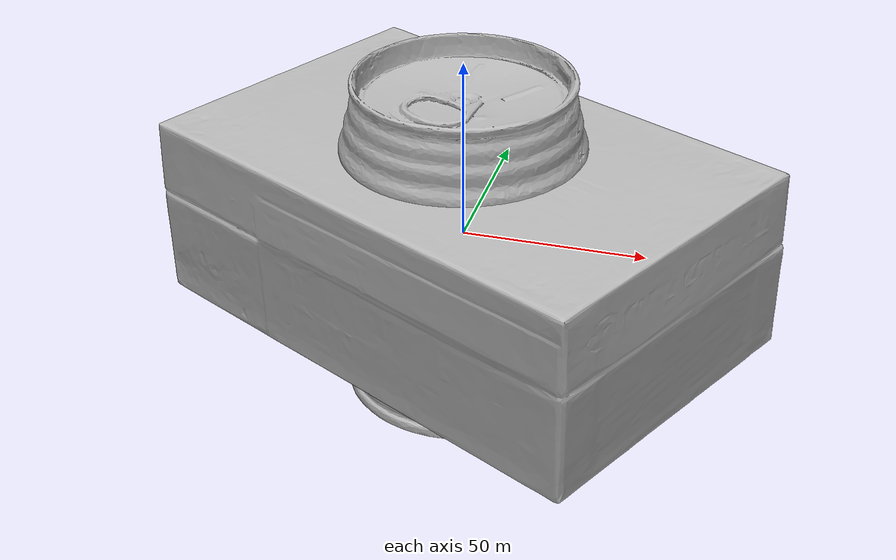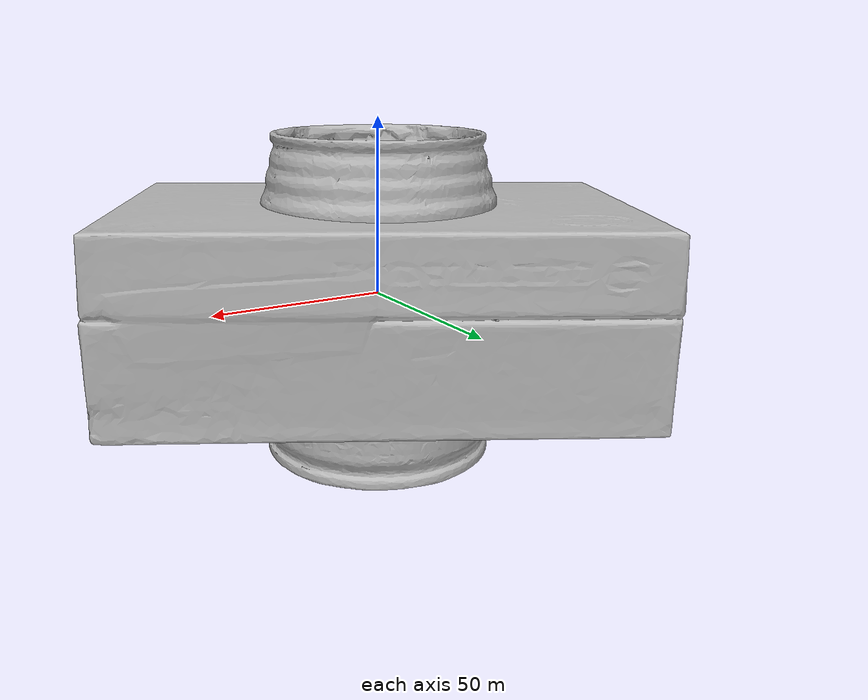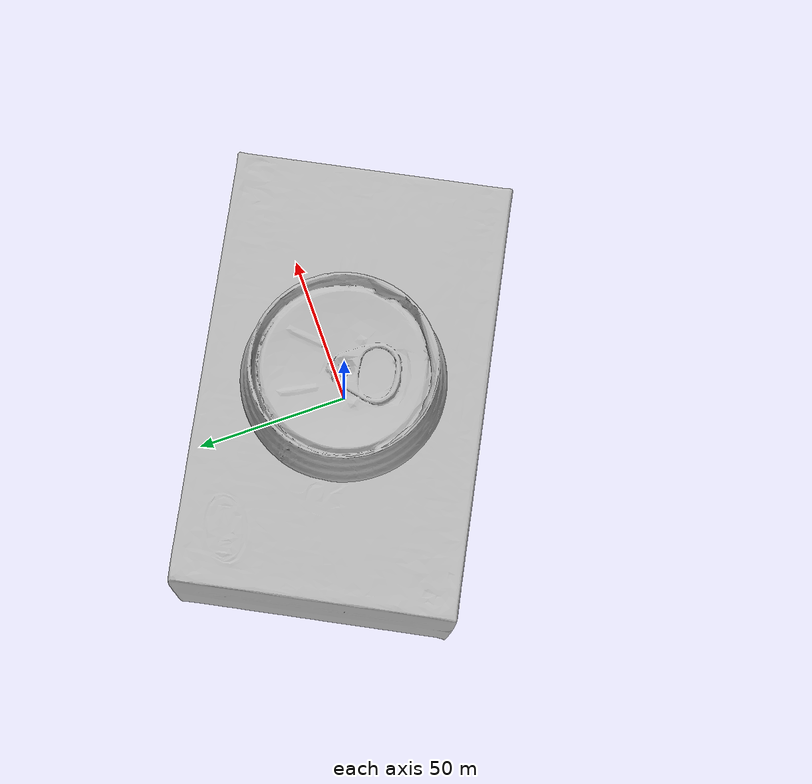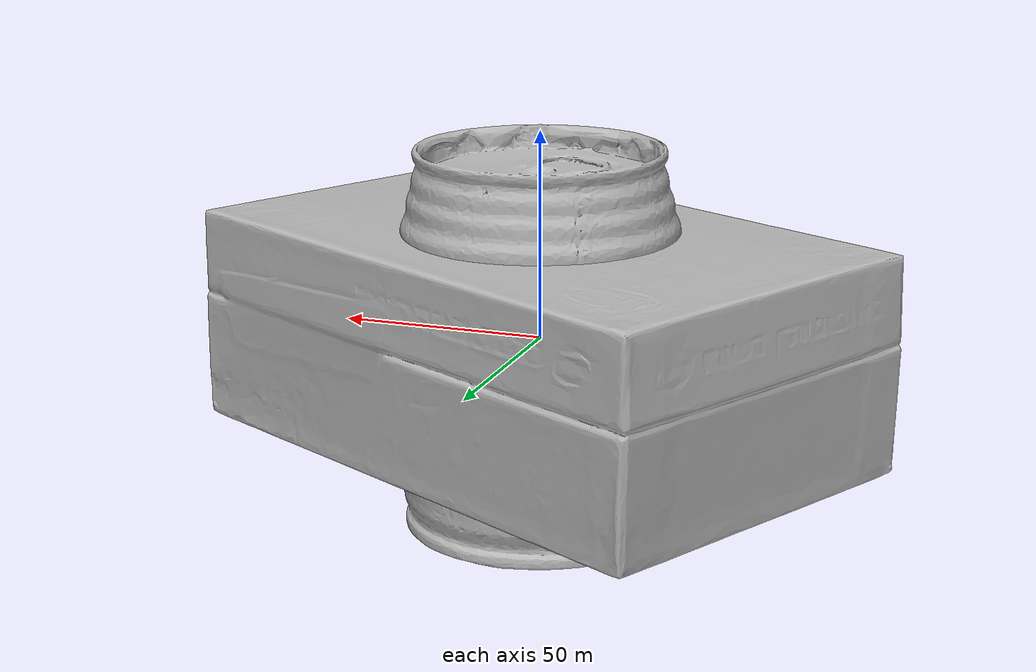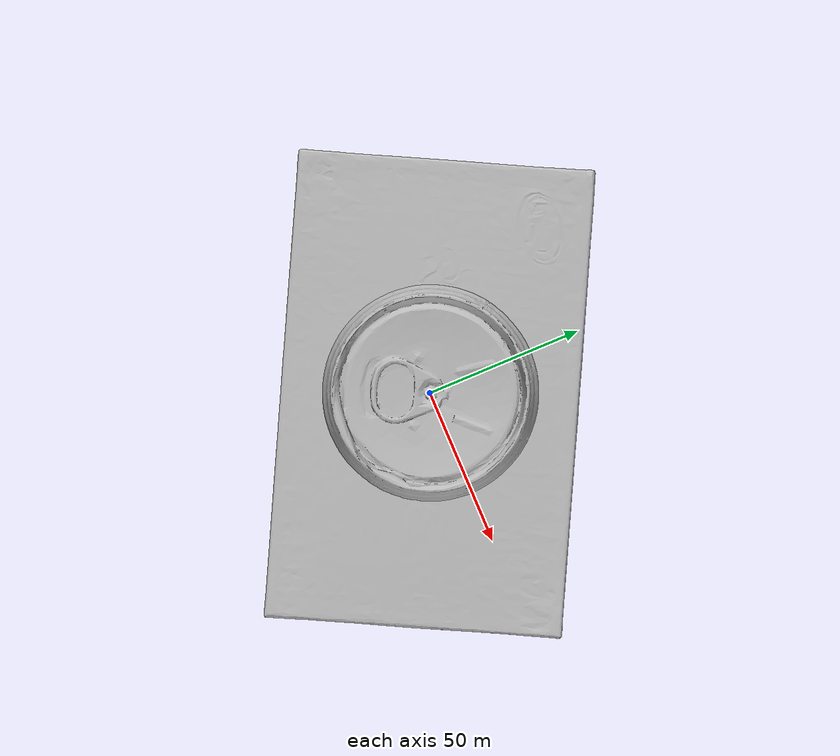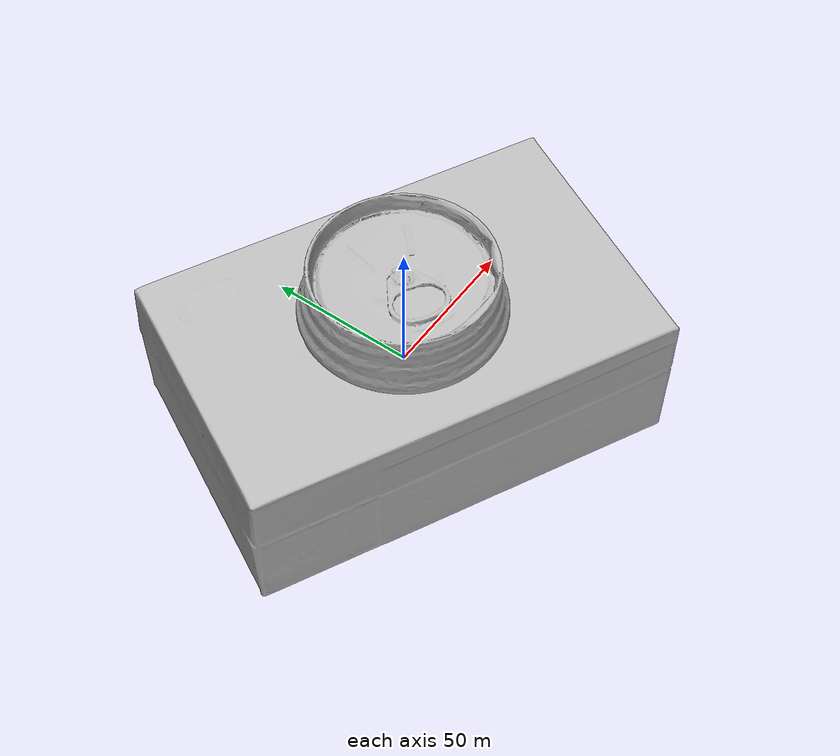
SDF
<?xml version="1.0" ?>
<sdf version="1.4">
  <world name="default">
    <light name="light1" type="point">
      <pose>0 0 1 0 0 0</pose>
      <diffuse>3 3 3 1</diffuse>
      <specular>3 3 3 1</specular>
    </light>
    <light name="light2" type="point">
      <pose>0 0.5 2 0 0 0</pose>
      <diffuse>1 1 1 1</diffuse>
      <specular>1 1 1 1</specular>
    </light>
    <light name="light3" type="point">
      <pose>0 0.5 2 0 0 0</pose>
      <diffuse>3 3 3 1</diffuse>
      <specular>3 3 3 1</specular>
    </light>
    <scene>
      <ambient>0.7 0.7 0.7</ambient>
    </scene>
    <model name="box1">
      <link name="link_box1">
        <collision name="default">
          <geometry>
            <mesh>
              <uri>model://realsense_box/collision_meshes/collision.obj</uri>
              <scale>1.0 1.0 1.0</scale>
            </mesh>
          </geometry>
          <surface>
            <friction>
              <ode>
                <mu>0.5</mu>
                <mu2>0.5</mu2>
              </ode>
            </friction>
            <contact>
              <ode>
                <max_vel>0</max_vel>
                <min_depth>0.0001</min_depth>
                <kp>1e8</kp>
              </ode>
            </contact>
          </surface>
        </collision>
        <visual name="default">
          <geometry>
            <mesh>
              <uri>model://realsense_box/visual_meshes/visual.dae</uri>
              <scale>1.0 1.0 1.0</scale>
            </mesh>
          </geometry>
        </visual>
        <inertial>
          <mass>0.5864310264587402</mass>
          <pose>4.0744838770478964e-05 8.587492629885674e-05 -2.4153792764991522e-05 -0.00012602841398420584 -0.00635893997803049 0.005012323893530406</pose>
          <inertia>
            <ixx>0.00055784633</ixx>
            <iyy>0.0011643406</iyy>
            <izz>0.0014403972</izz>
            <ixy>0</ixy>
            <ixz>0</ixz>
            <iyz>0</iyz>
          </inertia>
        </inertial>
      </link>
      <pose>0.14742012321949005 -0.006876363884657621 0.027316013351082802 -1.5464553964069392e-08 -1.7527844691348073e-08 -0.48311994432610605</pose>
    </model>
    <model name="box2">
      <link name="link_box2">
        <collision name="default">
          <geometry>
            <mesh>
              <uri>model://wooden_puzzle1/collision_meshes/collision.obj</uri>
              <scale>1.0 1.0 1.0</scale>
            </mesh>
          </geometry>
          <surface>
            <friction>
              <ode>
                <mu>0.5</mu>
                <mu2>0.5</mu2>
              </ode>
            </friction>
            <contact>
              <ode>
                <max_vel>0</max_vel>
                <min_depth>0.0001</min_depth>
                <kp>1e8</kp>
              </ode>
            </contact>
          </surface>
        </collision>
        <visual name="default">
          <geometry>
            <mesh>
              <uri>model://wooden_puzzle1/visual_meshes/visual.dae</uri>
              <scale>1.0 1.0 1.0</scale>
            </mesh>
          </geometry>
        </visual>
        <inertial>
          <mass>0.029293930158019066</mass>
          <pose>-0.00017350679263472557 7.972260209498927e-05 -9.191554272547364e-05 -0.07784356807478612 -0.26361316070226715 -0.552870069934309</pose>
          <inertia>
            <ixx>5.5269634e-06</ixx>
            <iyy>5.4205675e-06</iyy>
            <izz>5.4852344e-06</izz>
            <ixy>0</ixy>
            <ixz>0</ixz>
            <iyz>0</iyz>
          </inertia>
        </inertial>
      </link>
      <pose>0.013168343342840672 -0.3797875642776489 0.016801994293928146 0.010515248342584778 -0.009457251109677503 0.23097542267750285</pose>
    </model>
    <model name="box3">
      <link name="link_box3">
        <collision name="default">
          <geometry>
            <mesh>
              <uri>model://wooden_puzzle2/collision_meshes/collision.obj</uri>
              <scale>1.0 1.0 1.0</scale>
            </mesh>
          </geometry>
          <surface>
            <friction>
              <ode>
                <mu>0.5</mu>
                <mu2>0.5</mu2>
              </ode>
            </friction>
            <contact>
              <ode>
                <max_vel>0</max_vel>
                <min_depth>0.0001</min_depth>
                <kp>1e8</kp>
              </ode>
            </contact>
          </surface>
        </collision>
        <visual name="default">
          <geometry>
            <mesh>
              <uri>model://wooden_puzzle2/visual_meshes/visual.dae</uri>
              <scale>1.0 1.0 1.0</scale>
            </mesh>
          </geometry>
        </visual>
        <inertial>
          <mass>0.046210821717977524</mass>
          <pose>2.7402538762544282e-05 4.9976635636994615e-05 6.587122334167361e-05 -0.19202726218652877 0.6112834530151037 -0.6338736448019666</pose>
          <inertia>
            <ixx>8.590097e-06</ixx>
            <iyy>8.826809e-06</iyy>
            <izz>8.7012395e-06</izz>
            <ixy>0</ixy>
            <ixz>0</ixz>
            <iyz>0</iyz>
          </inertia>
        </inertial>
      </link>
      <pose>0.03701087832450867 0.046910110861063004 0.01691773533821106 0.020848729246005362 0.0007208092904040768 1.835208518537805</pose>
    </model>
    <model name="can1">
      <link name="link_can1">
        <collision name="default">
          <geometry>
            <mesh>
              <uri>model://pepsi/collision_meshes/collision.obj</uri>
              <scale>1.0 1.0 1.0</scale>
            </mesh>
          </geometry>
          <surface>
            <friction>
              <ode>
                <mu>0.5</mu>
                <mu2>0.5</mu2>
              </ode>
            </friction>
            <contact>
              <ode>
                <max_vel>0</max_vel>
                <min_depth>0.0001</min_depth>
                <kp>1e8</kp>
              </ode>
            </contact>
          </surface>
        </collision>
        <visual name="default">
          <geometry>
            <mesh>
              <uri>model://pepsi/visual_meshes/visual.dae</uri>
              <scale>1.0 1.0 1.0</scale>
            </mesh>
          </geometry>
        </visual>
        <inertial>
          <mass>0.38708412647247314</mass>
          <pose>-7.5590331107378e-05 2.9931279641459696e-05 -0.0003384356386959553 -0.0010677624110939459 -0.0021735778616849013 0.5673701652335379</pose>
          <inertia>
            <ixx>0.00077114574</ixx>
            <iyy>0.0007705839</iyy>
            <izz>0.00016412749</izz>
            <ixy>0</ixy>
            <ixz>0</ixz>
            <iyz>0</iyz>
          </inertia>
        </inertial>
      </link>
      <pose>0.0279801394790411 -0.041986480355262756 0.0744963213801384 -1.8492496848838617e-05 2.3554309459491956e-06 0.12482004284199626</pose>
    </model>
    <model name="can2">
      <link name="link_can2">
        <collision name="default">
          <geometry>
            <mesh>
              <uri>model://redbull/collision_meshes/collision.obj</uri>
              <scale>1.0 1.0 1.0</scale>
            </mesh>
          </geometry>
          <surface>
            <friction>
              <ode>
                <mu>0.5</mu>
                <mu2>0.5</mu2>
              </ode>
            </friction>
            <contact>
              <ode>
                <max_vel>0</max_vel>
                <min_depth>0.0001</min_depth>
                <kp>1e8</kp>
              </ode>
            </contact>
          </surface>
        </collision>
        <visual name="default">
          <geometry>
            <mesh>
              <uri>model://redbull/visual_meshes/visual.dae</uri>
              <scale>1.0 1.0 1.0</scale>
            </mesh>
          </geometry>
        </visual>
        <inertial>
          <mass>0.22841571271419525</mass>
          <pose>-2.2126563635538332e-05 -0.00012659550702665 -0.0006860988214612007 0.001137008533125708 -0.010800935482360328 0.5858832407094048</pose>
          <inertia>
            <ixx>0.00021475992</ixx>
            <iyy>0.00021494119</iyy>
            <izz>0.00012744407</izz>
            <ixy>0</ixy>
            <ixz>0</ixz>
            <iyz>0</iyz>
          </inertia>
        </inertial>
      </link>
      <pose>0.20096294581890106 0.22172904014587402 0.04638564586639404 -0.010488800429648098 0.007261315865977173 -0.061396245112950346</pose>
    </model>
    <physics type="ode">
      <max_contacts>50</max_contacts>
      <ode>
        <solver>
          <type>quick</type>
          <iters>75</iters>
        </solver>
        <constraints>
          <contact_max_correcting_vel>0</contact_max_correcting_vel>
          <contact_surface_layer>0</contact_surface_layer>
        </constraints>
      </ode>
    </physics>
  </world>
</sdf>
